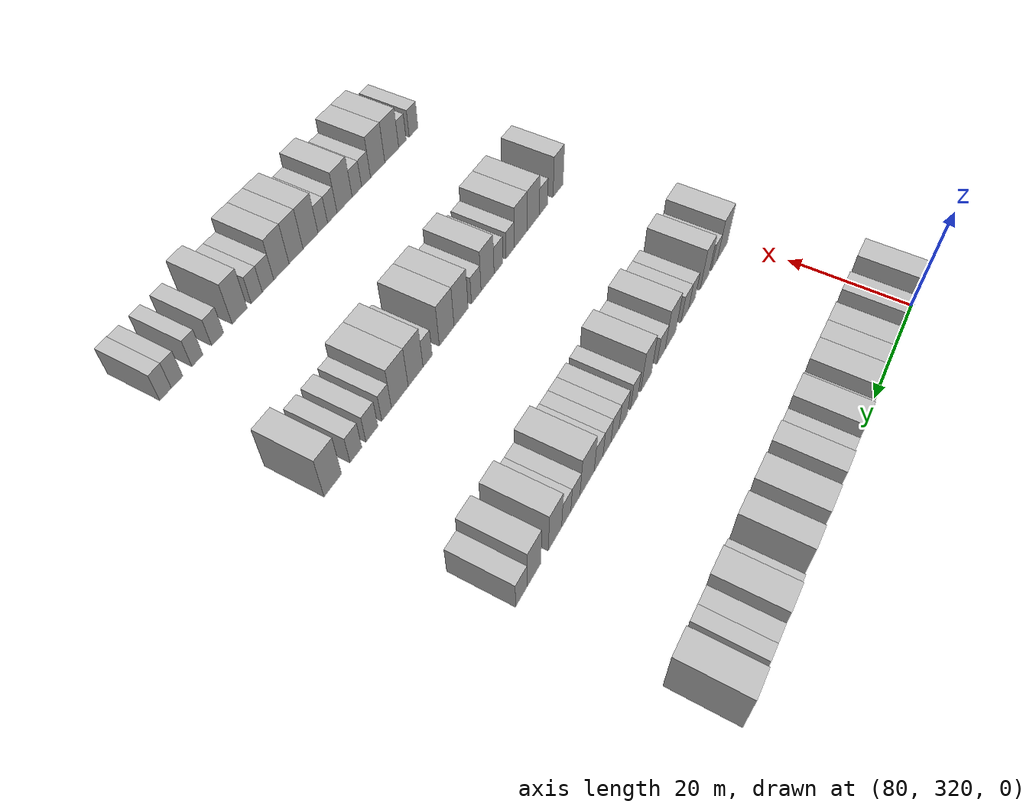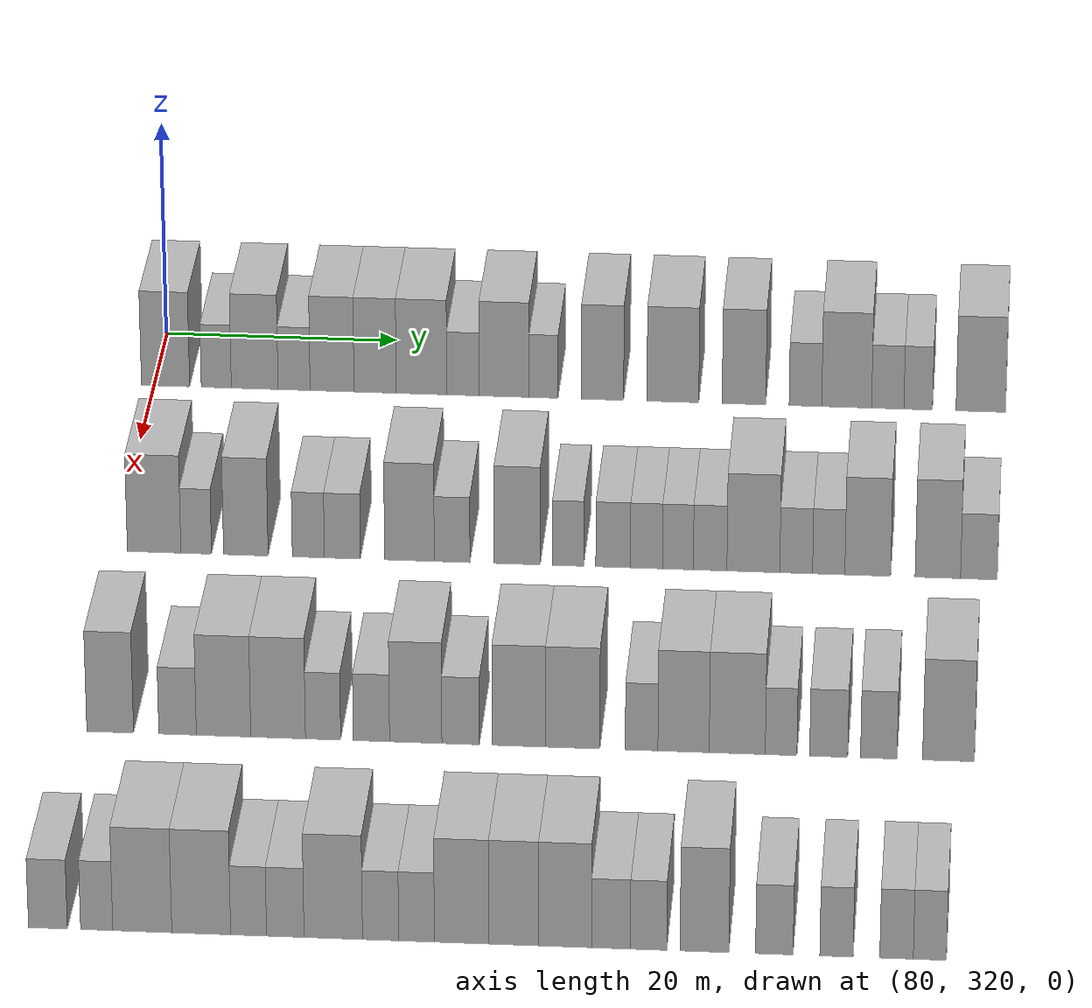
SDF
<sdf version="1.6">
 <world name="default">
  <model name="building_661">
   <static>1</static>
   <pose>85.0000 320.9928 0 0.000000 0.000000 0.000000</pose>
   <link name="link">
    <pose>0 0 4.50 0 0 0</pose>
    <collision name="collision"><geometry><box><size>10.0000 4.1481 9.0000</size></box></geometry></collision>
    <visual name="visual">
     <cast_shadows>0</cast_shadows>
     <geometry><box><size>10.0000 4.1481 9.0000</size></box></geometry>
     <material>
      <script>
       <uri>model://HANNAS_wall/materials/scripts</uri>
       <uri>model://HANNAS_wall/materials/textures</uri>
       <name>vrc/HANNAS_wall</name>
      </script>
     </material>
    </visual>
   </link>
  </model>
  <model name="building_662">
   <static>1</static>
   <pose>85.0000 325.3574 0 0.000000 0.000000 0.000000</pose>
   <link name="link">
    <pose>0 0 3.00 0 0 0</pose>
    <collision name="collision"><geometry><box><size>10.0000 2.5812 6.0000</size></box></geometry></collision>
    <visual name="visual">
     <cast_shadows>0</cast_shadows>
     <geometry><box><size>10.0000 2.5812 6.0000</size></box></geometry>
     <material>
      <script>
       <uri>model://HANNAS_wall/materials/scripts</uri>
       <uri>model://HANNAS_wall/materials/textures</uri>
       <name>vrc/HANNAS_wall</name>
      </script>
     </material>
    </visual>
   </link>
  </model>
  <model name="building_663">
   <static>1</static>
   <pose>85.0000 328.6591 0 0.000000 0.000000 0.000000</pose>
   <link name="link">
    <pose>0 0 4.50 0 0 0</pose>
    <collision name="collision"><geometry><box><size>10.0000 4.0221 9.0000</size></box></geometry></collision>
    <visual name="visual">
     <cast_shadows>0</cast_shadows>
     <geometry><box><size>10.0000 4.0221 9.0000</size></box></geometry>
     <material>
      <script>
       <uri>model://HANNAS_wall/materials/scripts</uri>
       <uri>model://HANNAS_wall/materials/textures</uri>
       <name>vrc/HANNAS_wall</name>
      </script>
     </material>
    </visual>
   </link>
  </model>
  <model name="building_664">
   <static>1</static>
   <pose>85.0000 332.0482 0 0.000000 0.000000 0.000000</pose>
   <link name="link">
    <pose>0 0 3.00 0 0 0</pose>
    <collision name="collision"><geometry><box><size>10.0000 2.7561 6.0000</size></box></geometry></collision>
    <visual name="visual">
     <cast_shadows>0</cast_shadows>
     <geometry><box><size>10.0000 2.7561 6.0000</size></box></geometry>
     <material>
      <script>
       <uri>model://HANNAS_wall/materials/scripts</uri>
       <uri>model://HANNAS_wall/materials/textures</uri>
       <name>vrc/HANNAS_wall</name>
      </script>
     </material>
    </visual>
   </link>
  </model>
  <model name="building_665">
   <static>1</static>
   <pose>85.0000 335.3131 0 0.000000 0.000000 0.000000</pose>
   <link name="link">
    <pose>0 0 4.50 0 0 0</pose>
    <collision name="collision"><geometry><box><size>10.0000 3.7737 9.0000</size></box></geometry></collision>
    <visual name="visual">
     <cast_shadows>0</cast_shadows>
     <geometry><box><size>10.0000 3.7737 9.0000</size></box></geometry>
     <material>
      <script>
       <uri>model://HANNAS_wall/materials/scripts</uri>
       <uri>model://HANNAS_wall/materials/textures</uri>
       <name>vrc/HANNAS_wall</name>
      </script>
     </material>
    </visual>
   </link>
  </model>
  <model name="building_666">
   <static>1</static>
   <pose>85.0000 339.0112 0 0.000000 0.000000 0.000000</pose>
   <link name="link">
    <pose>0 0 4.50 0 0 0</pose>
    <collision name="collision"><geometry><box><size>10.0000 3.6226 9.0000</size></box></geometry></collision>
    <visual name="visual">
     <cast_shadows>0</cast_shadows>
     <geometry><box><size>10.0000 3.6226 9.0000</size></box></geometry>
     <material>
      <script>
       <uri>model://HANNAS_wall/materials/scripts</uri>
       <uri>model://HANNAS_wall/materials/textures</uri>
       <name>vrc/HANNAS_wall</name>
      </script>
     </material>
    </visual>
   </link>
  </model>
  <model name="building_667">
   <static>1</static>
   <pose>85.0000 342.9909 0 0.000000 0.000000 0.000000</pose>
   <link name="link">
    <pose>0 0 4.50 0 0 0</pose>
    <collision name="collision"><geometry><box><size>10.0000 4.3369 9.0000</size></box></geometry></collision>
    <visual name="visual">
     <cast_shadows>0</cast_shadows>
     <geometry><box><size>10.0000 4.3369 9.0000</size></box></geometry>
     <material>
      <script>
       <uri>model://HANNAS_wall/materials/scripts</uri>
       <uri>model://HANNAS_wall/materials/textures</uri>
       <name>vrc/HANNAS_wall</name>
      </script>
     </material>
    </visual>
   </link>
  </model>
  <model name="building_668">
   <static>1</static>
   <pose>85.0000 346.5485 0 0.000000 0.000000 0.000000</pose>
   <link name="link">
    <pose>0 0 3.00 0 0 0</pose>
    <collision name="collision"><geometry><box><size>10.0000 2.7782 6.0000</size></box></geometry></collision>
    <visual name="visual">
     <cast_shadows>0</cast_shadows>
     <geometry><box><size>10.0000 2.7782 6.0000</size></box></geometry>
     <material>
      <script>
       <uri>model://HANNAS_wall/materials/scripts</uri>
       <uri>model://HANNAS_wall/materials/textures</uri>
       <name>vrc/HANNAS_wall</name>
      </script>
     </material>
    </visual>
   </link>
  </model>
  <model name="building_669">
   <static>1</static>
   <pose>85.0000 350.0756 0 0.000000 0.000000 0.000000</pose>
   <link name="link">
    <pose>0 0 4.50 0 0 0</pose>
    <collision name="collision"><geometry><box><size>10.0000 4.2761 9.0000</size></box></geometry></collision>
    <visual name="visual">
     <cast_shadows>0</cast_shadows>
     <geometry><box><size>10.0000 4.2761 9.0000</size></box></geometry>
     <material>
      <script>
       <uri>model://HANNAS_wall/materials/scripts</uri>
       <uri>model://HANNAS_wall/materials/textures</uri>
       <name>vrc/HANNAS_wall</name>
      </script>
     </material>
    </visual>
   </link>
  </model>
  <model name="building_670">
   <static>1</static>
   <pose>85.0000 353.4515 0 0.000000 0.000000 0.000000</pose>
   <link name="link">
    <pose>0 0 3.00 0 0 0</pose>
    <collision name="collision"><geometry><box><size>10.0000 2.4756 6.0000</size></box></geometry></collision>
    <visual name="visual">
     <cast_shadows>0</cast_shadows>
     <geometry><box><size>10.0000 2.4756 6.0000</size></box></geometry>
     <material>
      <script>
       <uri>model://HANNAS_wall/materials/scripts</uri>
       <uri>model://HANNAS_wall/materials/textures</uri>
       <name>vrc/HANNAS_wall</name>
      </script>
     </material>
    </visual>
   </link>
  </model>
  <model name="building_671">
   <static>1</static>
   <pose>85.0000 358.4943 0 0.000000 0.000000 0.000000</pose>
   <link name="link">
    <pose>0 0 4.50 0 0 0</pose>
    <collision name="collision"><geometry><box><size>10.0000 3.6102 9.0000</size></box></geometry></collision>
    <visual name="visual">
     <cast_shadows>0</cast_shadows>
     <geometry><box><size>10.0000 3.6102 9.0000</size></box></geometry>
     <material>
      <script>
       <uri>model://HANNAS_wall/materials/scripts</uri>
       <uri>model://HANNAS_wall/materials/textures</uri>
       <name>vrc/HANNAS_wall</name>
      </script>
     </material>
    </visual>
   </link>
  </model>
  <model name="building_672">
   <static>1</static>
   <pose>85.0000 364.5094 0 0.000000 0.000000 0.000000</pose>
   <link name="link">
    <pose>0 0 4.50 0 0 0</pose>
    <collision name="collision"><geometry><box><size>10.0000 4.4199 9.0000</size></box></geometry></collision>
    <visual name="visual">
     <cast_shadows>0</cast_shadows>
     <geometry><box><size>10.0000 4.4199 9.0000</size></box></geometry>
     <material>
      <script>
       <uri>model://HANNAS_wall/materials/scripts</uri>
       <uri>model://HANNAS_wall/materials/textures</uri>
       <name>vrc/HANNAS_wall</name>
      </script>
     </material>
    </visual>
   </link>
  </model>
  <model name="building_673">
   <static>1</static>
   <pose>85.0000 370.5767 0 0.000000 0.000000 0.000000</pose>
   <link name="link">
    <pose>0 0 4.50 0 0 0</pose>
    <collision name="collision"><geometry><box><size>10.0000 3.7147 9.0000</size></box></geometry></collision>
    <visual name="visual">
     <cast_shadows>0</cast_shadows>
     <geometry><box><size>10.0000 3.7147 9.0000</size></box></geometry>
     <material>
      <script>
       <uri>model://HANNAS_wall/materials/scripts</uri>
       <uri>model://HANNAS_wall/materials/textures</uri>
       <name>vrc/HANNAS_wall</name>
      </script>
     </material>
    </visual>
   </link>
  </model>
  <model name="building_674">
   <static>1</static>
   <pose>85.0000 375.8198 0 0.000000 0.000000 0.000000</pose>
   <link name="link">
    <pose>0 0 3.00 0 0 0</pose>
    <collision name="collision"><geometry><box><size>10.0000 2.7715 6.0000</size></box></geometry></collision>
    <visual name="visual">
     <cast_shadows>0</cast_shadows>
     <geometry><box><size>10.0000 2.7715 6.0000</size></box></geometry>
     <material>
      <script>
       <uri>model://HANNAS_wall/materials/scripts</uri>
       <uri>model://HANNAS_wall/materials/textures</uri>
       <name>vrc/HANNAS_wall</name>
      </script>
     </material>
    </visual>
   </link>
  </model>
  <model name="building_675">
   <static>1</static>
   <pose>85.0000 379.3300 0 0.000000 0.000000 0.000000</pose>
   <link name="link">
    <pose>0 0 4.50 0 0 0</pose>
    <collision name="collision"><geometry><box><size>10.0000 4.2488 9.0000</size></box></geometry></collision>
    <visual name="visual">
     <cast_shadows>0</cast_shadows>
     <geometry><box><size>10.0000 4.2488 9.0000</size></box></geometry>
     <material>
      <script>
       <uri>model://HANNAS_wall/materials/scripts</uri>
       <uri>model://HANNAS_wall/materials/textures</uri>
       <name>vrc/HANNAS_wall</name>
      </script>
     </material>
    </visual>
   </link>
  </model>
  <model name="building_676">
   <static>1</static>
   <pose>85.0000 382.8301 0 0.000000 0.000000 0.000000</pose>
   <link name="link">
    <pose>0 0 3.00 0 0 0</pose>
    <collision name="collision"><geometry><box><size>10.0000 2.7515 6.0000</size></box></geometry></collision>
    <visual name="visual">
     <cast_shadows>0</cast_shadows>
     <geometry><box><size>10.0000 2.7515 6.0000</size></box></geometry>
     <material>
      <script>
       <uri>model://HANNAS_wall/materials/scripts</uri>
       <uri>model://HANNAS_wall/materials/textures</uri>
       <name>vrc/HANNAS_wall</name>
      </script>
     </material>
    </visual>
   </link>
  </model>
  <model name="building_677">
   <static>1</static>
   <pose>85.0000 385.4234 0 0.000000 0.000000 0.000000</pose>
   <link name="link">
    <pose>0 0 3.00 0 0 0</pose>
    <collision name="collision"><geometry><box><size>10.0000 2.4351 6.0000</size></box></geometry></collision>
    <visual name="visual">
     <cast_shadows>0</cast_shadows>
     <geometry><box><size>10.0000 2.4351 6.0000</size></box></geometry>
     <material>
      <script>
       <uri>model://HANNAS_wall/materials/scripts</uri>
       <uri>model://HANNAS_wall/materials/textures</uri>
       <name>vrc/HANNAS_wall</name>
      </script>
     </material>
    </visual>
   </link>
  </model>
  <model name="building_678">
   <static>1</static>
   <pose>85.0000 390.7449 0 0.000000 0.000000 0.000000</pose>
   <link name="link">
    <pose>0 0 4.50 0 0 0</pose>
    <collision name="collision"><geometry><box><size>10.0000 4.2079 9.0000</size></box></geometry></collision>
    <visual name="visual">
     <cast_shadows>0</cast_shadows>
     <geometry><box><size>10.0000 4.2079 9.0000</size></box></geometry>
     <material>
      <script>
       <uri>model://HANNAS_wall/materials/scripts</uri>
       <uri>model://HANNAS_wall/materials/textures</uri>
       <name>vrc/HANNAS_wall</name>
      </script>
     </material>
    </visual>
   </link>
  </model>
  <model name="building_884">
   <static>1</static>
   <pose>115.0000 323.4677 0 0.000000 0.000000 0.000000</pose>
   <link name="link">
    <pose>0 0 4.50 0 0 0</pose>
    <collision name="collision"><geometry><box><size>10.0000 4.4150 9.0000</size></box></geometry></collision>
    <visual name="visual">
     <cast_shadows>0</cast_shadows>
     <geometry><box><size>10.0000 4.4150 9.0000</size></box></geometry>
     <material>
      <script>
       <uri>model://HANNAS_wall/materials/scripts</uri>
       <uri>model://HANNAS_wall/materials/textures</uri>
       <name>vrc/HANNAS_wall</name>
      </script>
     </material>
    </visual>
   </link>
  </model>
  <model name="building_885">
   <static>1</static>
   <pose>115.0000 326.9404 0 0.000000 0.000000 0.000000</pose>
   <link name="link">
    <pose>0 0 3.00 0 0 0</pose>
    <collision name="collision"><geometry><box><size>10.0000 2.5305 6.0000</size></box></geometry></collision>
    <visual name="visual">
     <cast_shadows>0</cast_shadows>
     <geometry><box><size>10.0000 2.5305 6.0000</size></box></geometry>
     <material>
      <script>
       <uri>model://HANNAS_wall/materials/scripts</uri>
       <uri>model://HANNAS_wall/materials/textures</uri>
       <name>vrc/HANNAS_wall</name>
      </script>
     </material>
    </visual>
   </link>
  </model>
  <model name="building_886">
   <static>1</static>
   <pose>115.0000 331.0403 0 0.000000 0.000000 0.000000</pose>
   <link name="link">
    <pose>0 0 4.50 0 0 0</pose>
    <collision name="collision"><geometry><box><size>10.0000 3.6694 9.0000</size></box></geometry></collision>
    <visual name="visual">
     <cast_shadows>0</cast_shadows>
     <geometry><box><size>10.0000 3.6694 9.0000</size></box></geometry>
     <material>
      <script>
       <uri>model://HANNAS_wall/materials/scripts</uri>
       <uri>model://HANNAS_wall/materials/textures</uri>
       <name>vrc/HANNAS_wall</name>
      </script>
     </material>
    </visual>
   </link>
  </model>
  <model name="building_887">
   <static>1</static>
   <pose>115.0000 336.1963 0 0.000000 0.000000 0.000000</pose>
   <link name="link">
    <pose>0 0 3.00 0 0 0</pose>
    <collision name="collision"><geometry><box><size>10.0000 2.6426 6.0000</size></box></geometry></collision>
    <visual name="visual">
     <cast_shadows>0</cast_shadows>
     <geometry><box><size>10.0000 2.6426 6.0000</size></box></geometry>
     <material>
      <script>
       <uri>model://HANNAS_wall/materials/scripts</uri>
       <uri>model://HANNAS_wall/materials/textures</uri>
       <name>vrc/HANNAS_wall</name>
      </script>
     </material>
    </visual>
   </link>
  </model>
  <model name="building_888">
   <static>1</static>
   <pose>115.0000 338.9996 0 0.000000 0.000000 0.000000</pose>
   <link name="link">
    <pose>0 0 3.00 0 0 0</pose>
    <collision name="collision"><geometry><box><size>10.0000 2.9640 6.0000</size></box></geometry></collision>
    <visual name="visual">
     <cast_shadows>0</cast_shadows>
     <geometry><box><size>10.0000 2.9640 6.0000</size></box></geometry>
     <material>
      <script>
       <uri>model://HANNAS_wall/materials/scripts</uri>
       <uri>model://HANNAS_wall/materials/textures</uri>
       <name>vrc/HANNAS_wall</name>
      </script>
     </material>
    </visual>
   </link>
  </model>
  <model name="building_889">
   <static>1</static>
   <pose>115.0000 344.5220 0 0.000000 0.000000 0.000000</pose>
   <link name="link">
    <pose>0 0 4.50 0 0 0</pose>
    <collision name="collision"><geometry><box><size>10.0000 4.0808 9.0000</size></box></geometry></collision>
    <visual name="visual">
     <cast_shadows>0</cast_shadows>
     <geometry><box><size>10.0000 4.0808 9.0000</size></box></geometry>
     <material>
      <script>
       <uri>model://HANNAS_wall/materials/scripts</uri>
       <uri>model://HANNAS_wall/materials/textures</uri>
       <name>vrc/HANNAS_wall</name>
      </script>
     </material>
    </visual>
   </link>
  </model>
  <model name="building_890">
   <static>1</static>
   <pose>115.0000 348.0281 0 0.000000 0.000000 0.000000</pose>
   <link name="link">
    <pose>0 0 3.00 0 0 0</pose>
    <collision name="collision"><geometry><box><size>10.0000 2.9313 6.0000</size></box></geometry></collision>
    <visual name="visual">
     <cast_shadows>0</cast_shadows>
     <geometry><box><size>10.0000 2.9313 6.0000</size></box></geometry>
     <material>
      <script>
       <uri>model://HANNAS_wall/materials/scripts</uri>
       <uri>model://HANNAS_wall/materials/textures</uri>
       <name>vrc/HANNAS_wall</name>
      </script>
     </material>
    </visual>
   </link>
  </model>
  <model name="building_891">
   <static>1</static>
   <pose>115.0000 353.3814 0 0.000000 0.000000 0.000000</pose>
   <link name="link">
    <pose>0 0 4.50 0 0 0</pose>
    <collision name="collision"><geometry><box><size>10.0000 3.7753 9.0000</size></box></geometry></collision>
    <visual name="visual">
     <cast_shadows>0</cast_shadows>
     <geometry><box><size>10.0000 3.7753 9.0000</size></box></geometry>
     <material>
      <script>
       <uri>model://HANNAS_wall/materials/scripts</uri>
       <uri>model://HANNAS_wall/materials/textures</uri>
       <name>vrc/HANNAS_wall</name>
      </script>
     </material>
    </visual>
   </link>
  </model>
  <model name="building_892">
   <static>1</static>
   <pose>115.0000 357.5478 0 0.000000 0.000000 0.000000</pose>
   <link name="link">
    <pose>0 0 3.00 0 0 0</pose>
    <collision name="collision"><geometry><box><size>10.0000 2.5576 6.0000</size></box></geometry></collision>
    <visual name="visual">
     <cast_shadows>0</cast_shadows>
     <geometry><box><size>10.0000 2.5576 6.0000</size></box></geometry>
     <material>
      <script>
       <uri>model://HANNAS_wall/materials/scripts</uri>
       <uri>model://HANNAS_wall/materials/textures</uri>
       <name>vrc/HANNAS_wall</name>
      </script>
     </material>
    </visual>
   </link>
  </model>
  <model name="building_893">
   <static>1</static>
   <pose>115.0000 361.2484 0 0.000000 0.000000 0.000000</pose>
   <link name="link">
    <pose>0 0 3.00 0 0 0</pose>
    <collision name="collision"><geometry><box><size>10.0000 2.8434 6.0000</size></box></geometry></collision>
    <visual name="visual">
     <cast_shadows>0</cast_shadows>
     <geometry><box><size>10.0000 2.8434 6.0000</size></box></geometry>
     <material>
      <script>
       <uri>model://HANNAS_wall/materials/scripts</uri>
       <uri>model://HANNAS_wall/materials/textures</uri>
       <name>vrc/HANNAS_wall</name>
      </script>
     </material>
    </visual>
   </link>
  </model>
  <model name="building_894">
   <static>1</static>
   <pose>115.0000 363.9773 0 0.000000 0.000000 0.000000</pose>
   <link name="link">
    <pose>0 0 3.00 0 0 0</pose>
    <collision name="collision"><geometry><box><size>10.0000 2.6145 6.0000</size></box></geometry></collision>
    <visual name="visual">
     <cast_shadows>0</cast_shadows>
     <geometry><box><size>10.0000 2.6145 6.0000</size></box></geometry>
     <material>
      <script>
       <uri>model://HANNAS_wall/materials/scripts</uri>
       <uri>model://HANNAS_wall/materials/textures</uri>
       <name>vrc/HANNAS_wall</name>
      </script>
     </material>
    </visual>
   </link>
  </model>
  <model name="building_895">
   <static>1</static>
   <pose>115.0000 366.5541 0 0.000000 0.000000 0.000000</pose>
   <link name="link">
    <pose>0 0 3.00 0 0 0</pose>
    <collision name="collision"><geometry><box><size>10.0000 2.5391 6.0000</size></box></geometry></collision>
    <visual name="visual">
     <cast_shadows>0</cast_shadows>
     <geometry><box><size>10.0000 2.5391 6.0000</size></box></geometry>
     <material>
      <script>
       <uri>model://HANNAS_wall/materials/scripts</uri>
       <uri>model://HANNAS_wall/materials/textures</uri>
       <name>vrc/HANNAS_wall</name>
      </script>
     </material>
    </visual>
   </link>
  </model>
  <model name="building_896">
   <static>1</static>
   <pose>115.0000 369.1966 0 0.000000 0.000000 0.000000</pose>
   <link name="link">
    <pose>0 0 3.00 0 0 0</pose>
    <collision name="collision"><geometry><box><size>10.0000 2.7458 6.0000</size></box></geometry></collision>
    <visual name="visual">
     <cast_shadows>0</cast_shadows>
     <geometry><box><size>10.0000 2.7458 6.0000</size></box></geometry>
     <material>
      <script>
       <uri>model://HANNAS_wall/materials/scripts</uri>
       <uri>model://HANNAS_wall/materials/textures</uri>
       <name>vrc/HANNAS_wall</name>
      </script>
     </material>
    </visual>
   </link>
  </model>
  <model name="building_897">
   <static>1</static>
   <pose>115.0000 372.7341 0 0.000000 0.000000 0.000000</pose>
   <link name="link">
    <pose>0 0 4.50 0 0 0</pose>
    <collision name="collision"><geometry><box><size>10.0000 4.3292 9.0000</size></box></geometry></collision>
    <visual name="visual">
     <cast_shadows>0</cast_shadows>
     <geometry><box><size>10.0000 4.3292 9.0000</size></box></geometry>
     <material>
      <script>
       <uri>model://HANNAS_wall/materials/scripts</uri>
       <uri>model://HANNAS_wall/materials/textures</uri>
       <name>vrc/HANNAS_wall</name>
      </script>
     </material>
    </visual>
   </link>
  </model>
  <model name="building_898">
   <static>1</static>
   <pose>115.0000 376.2368 0 0.000000 0.000000 0.000000</pose>
   <link name="link">
    <pose>0 0 3.00 0 0 0</pose>
    <collision name="collision"><geometry><box><size>10.0000 2.6763 6.0000</size></box></geometry></collision>
    <visual name="visual">
     <cast_shadows>0</cast_shadows>
     <geometry><box><size>10.0000 2.6763 6.0000</size></box></geometry>
     <material>
      <script>
       <uri>model://HANNAS_wall/materials/scripts</uri>
       <uri>model://HANNAS_wall/materials/textures</uri>
       <name>vrc/HANNAS_wall</name>
      </script>
     </material>
    </visual>
   </link>
  </model>
  <model name="building_899">
   <static>1</static>
   <pose>115.0000 378.8952 0 0.000000 0.000000 0.000000</pose>
   <link name="link">
    <pose>0 0 3.00 0 0 0</pose>
    <collision name="collision"><geometry><box><size>10.0000 2.6406 6.0000</size></box></geometry></collision>
    <visual name="visual">
     <cast_shadows>0</cast_shadows>
     <geometry><box><size>10.0000 2.6406 6.0000</size></box></geometry>
     <material>
      <script>
       <uri>model://HANNAS_wall/materials/scripts</uri>
       <uri>model://HANNAS_wall/materials/textures</uri>
       <name>vrc/HANNAS_wall</name>
      </script>
     </material>
    </visual>
   </link>
  </model>
  <model name="building_900">
   <static>1</static>
   <pose>115.0000 382.0871 0 0.000000 0.000000 0.000000</pose>
   <link name="link">
    <pose>0 0 4.50 0 0 0</pose>
    <collision name="collision"><geometry><box><size>10.0000 3.7431 9.0000</size></box></geometry></collision>
    <visual name="visual">
     <cast_shadows>0</cast_shadows>
     <geometry><box><size>10.0000 3.7431 9.0000</size></box></geometry>
     <material>
      <script>
       <uri>model://HANNAS_wall/materials/scripts</uri>
       <uri>model://HANNAS_wall/materials/textures</uri>
       <name>vrc/HANNAS_wall</name>
      </script>
     </material>
    </visual>
   </link>
  </model>
  <model name="building_901">
   <static>1</static>
   <pose>115.0000 387.8082 0 0.000000 0.000000 0.000000</pose>
   <link name="link">
    <pose>0 0 4.50 0 0 0</pose>
    <collision name="collision"><geometry><box><size>10.0000 3.6990 9.0000</size></box></geometry></collision>
    <visual name="visual">
     <cast_shadows>0</cast_shadows>
     <geometry><box><size>10.0000 3.6990 9.0000</size></box></geometry>
     <material>
      <script>
       <uri>model://HANNAS_wall/materials/scripts</uri>
       <uri>model://HANNAS_wall/materials/textures</uri>
       <name>vrc/HANNAS_wall</name>
      </script>
     </material>
    </visual>
   </link>
  </model>
  <model name="building_902">
   <static>1</static>
   <pose>115.0000 391.1540 0 0.000000 0.000000 0.000000</pose>
   <link name="link">
    <pose>0 0 3.00 0 0 0</pose>
    <collision name="collision"><geometry><box><size>10.0000 2.9928 6.0000</size></box></geometry></collision>
    <visual name="visual">
     <cast_shadows>0</cast_shadows>
     <geometry><box><size>10.0000 2.9928 6.0000</size></box></geometry>
     <material>
      <script>
       <uri>model://HANNAS_wall/materials/scripts</uri>
       <uri>model://HANNAS_wall/materials/textures</uri>
       <name>vrc/HANNAS_wall</name>
      </script>
     </material>
    </visual>
   </link>
  </model>
  <model name="building_1124">
   <static>1</static>
   <pose>145.0000 323.4549 0 0.000000 0.000000 0.000000</pose>
   <link name="link">
    <pose>0 0 4.50 0 0 0</pose>
    <collision name="collision"><geometry><box><size>10.0000 3.6958 9.0000</size></box></geometry></collision>
    <visual name="visual">
     <cast_shadows>0</cast_shadows>
     <geometry><box><size>10.0000 3.6958 9.0000</size></box></geometry>
     <material>
      <script>
       <uri>model://HANNAS_wall/materials/scripts</uri>
       <uri>model://HANNAS_wall/materials/textures</uri>
       <name>vrc/HANNAS_wall</name>
      </script>
     </material>
    </visual>
   </link>
  </model>
  <model name="building_1125">
   <static>1</static>
   <pose>145.0000 328.7836 0 0.000000 0.000000 0.000000</pose>
   <link name="link">
    <pose>0 0 3.00 0 0 0</pose>
    <collision name="collision"><geometry><box><size>10.0000 2.9616 6.0000</size></box></geometry></collision>
    <visual name="visual">
     <cast_shadows>0</cast_shadows>
     <geometry><box><size>10.0000 2.9616 6.0000</size></box></geometry>
     <material>
      <script>
       <uri>model://HANNAS_wall/materials/scripts</uri>
       <uri>model://HANNAS_wall/materials/textures</uri>
       <name>vrc/HANNAS_wall</name>
      </script>
     </material>
    </visual>
   </link>
  </model>
  <model name="building_1126">
   <static>1</static>
   <pose>145.0000 332.4140 0 0.000000 0.000000 0.000000</pose>
   <link name="link">
    <pose>0 0 4.50 0 0 0</pose>
    <collision name="collision"><geometry><box><size>10.0000 4.2992 9.0000</size></box></geometry></collision>
    <visual name="visual">
     <cast_shadows>0</cast_shadows>
     <geometry><box><size>10.0000 4.2992 9.0000</size></box></geometry>
     <material>
      <script>
       <uri>model://HANNAS_wall/materials/scripts</uri>
       <uri>model://HANNAS_wall/materials/textures</uri>
       <name>vrc/HANNAS_wall</name>
      </script>
     </material>
    </visual>
   </link>
  </model>
  <model name="building_1127">
   <static>1</static>
   <pose>145.0000 336.7216 0 0.000000 0.000000 0.000000</pose>
   <link name="link">
    <pose>0 0 4.50 0 0 0</pose>
    <collision name="collision"><geometry><box><size>10.0000 4.3159 9.0000</size></box></geometry></collision>
    <visual name="visual">
     <cast_shadows>0</cast_shadows>
     <geometry><box><size>10.0000 4.3159 9.0000</size></box></geometry>
     <material>
      <script>
       <uri>model://HANNAS_wall/materials/scripts</uri>
       <uri>model://HANNAS_wall/materials/textures</uri>
       <name>vrc/HANNAS_wall</name>
      </script>
     </material>
    </visual>
   </link>
  </model>
  <model name="building_1128">
   <static>1</static>
   <pose>145.0000 340.2677 0 0.000000 0.000000 0.000000</pose>
   <link name="link">
    <pose>0 0 3.00 0 0 0</pose>
    <collision name="collision"><geometry><box><size>10.0000 2.7764 6.0000</size></box></geometry></collision>
    <visual name="visual">
     <cast_shadows>0</cast_shadows>
     <geometry><box><size>10.0000 2.7764 6.0000</size></box></geometry>
     <material>
      <script>
       <uri>model://HANNAS_wall/materials/scripts</uri>
       <uri>model://HANNAS_wall/materials/textures</uri>
       <name>vrc/HANNAS_wall</name>
      </script>
     </material>
    </visual>
   </link>
  </model>
  <model name="building_1129">
   <static>1</static>
   <pose>145.0000 344.0821 0 0.000000 0.000000 0.000000</pose>
   <link name="link">
    <pose>0 0 3.00 0 0 0</pose>
    <collision name="collision"><geometry><box><size>10.0000 2.8522 6.0000</size></box></geometry></collision>
    <visual name="visual">
     <cast_shadows>0</cast_shadows>
     <geometry><box><size>10.0000 2.8522 6.0000</size></box></geometry>
     <material>
      <script>
       <uri>model://HANNAS_wall/materials/scripts</uri>
       <uri>model://HANNAS_wall/materials/textures</uri>
       <name>vrc/HANNAS_wall</name>
      </script>
     </material>
    </visual>
   </link>
  </model>
  <model name="building_1130">
   <static>1</static>
   <pose>145.0000 347.5694 0 0.000000 0.000000 0.000000</pose>
   <link name="link">
    <pose>0 0 4.50 0 0 0</pose>
    <collision name="collision"><geometry><box><size>10.0000 4.1225 9.0000</size></box></geometry></collision>
    <visual name="visual">
     <cast_shadows>0</cast_shadows>
     <geometry><box><size>10.0000 4.1225 9.0000</size></box></geometry>
     <material>
      <script>
       <uri>model://HANNAS_wall/materials/scripts</uri>
       <uri>model://HANNAS_wall/materials/textures</uri>
       <name>vrc/HANNAS_wall</name>
      </script>
     </material>
    </visual>
   </link>
  </model>
  <model name="building_1131">
   <static>1</static>
   <pose>145.0000 351.1100 0 0.000000 0.000000 0.000000</pose>
   <link name="link">
    <pose>0 0 3.00 0 0 0</pose>
    <collision name="collision"><geometry><box><size>10.0000 2.9587 6.0000</size></box></geometry></collision>
    <visual name="visual">
     <cast_shadows>0</cast_shadows>
     <geometry><box><size>10.0000 2.9587 6.0000</size></box></geometry>
     <material>
      <script>
       <uri>model://HANNAS_wall/materials/scripts</uri>
       <uri>model://HANNAS_wall/materials/textures</uri>
       <name>vrc/HANNAS_wall</name>
      </script>
     </material>
    </visual>
   </link>
  </model>
  <model name="building_1132">
   <static>1</static>
   <pose>145.0000 355.6881 0 0.000000 0.000000 0.000000</pose>
   <link name="link">
    <pose>0 0 4.50 0 0 0</pose>
    <collision name="collision"><geometry><box><size>10.0000 4.1975 9.0000</size></box></geometry></collision>
    <visual name="visual">
     <cast_shadows>0</cast_shadows>
     <geometry><box><size>10.0000 4.1975 9.0000</size></box></geometry>
     <material>
      <script>
       <uri>model://HANNAS_wall/materials/scripts</uri>
       <uri>model://HANNAS_wall/materials/textures</uri>
       <name>vrc/HANNAS_wall</name>
      </script>
     </material>
    </visual>
   </link>
  </model>
  <model name="building_1133">
   <static>1</static>
   <pose>145.0000 359.9212 0 0.000000 0.000000 0.000000</pose>
   <link name="link">
    <pose>0 0 4.50 0 0 0</pose>
    <collision name="collision"><geometry><box><size>10.0000 4.2688 9.0000</size></box></geometry></collision>
    <visual name="visual">
     <cast_shadows>0</cast_shadows>
     <geometry><box><size>10.0000 4.2688 9.0000</size></box></geometry>
     <material>
      <script>
       <uri>model://HANNAS_wall/materials/scripts</uri>
       <uri>model://HANNAS_wall/materials/textures</uri>
       <name>vrc/HANNAS_wall</name>
      </script>
     </material>
    </visual>
   </link>
  </model>
  <model name="building_1134">
   <static>1</static>
   <pose>145.0000 365.3314 0 0.000000 0.000000 0.000000</pose>
   <link name="link">
    <pose>0 0 3.00 0 0 0</pose>
    <collision name="collision"><geometry><box><size>10.0000 2.5514 6.0000</size></box></geometry></collision>
    <visual name="visual">
     <cast_shadows>0</cast_shadows>
     <geometry><box><size>10.0000 2.5514 6.0000</size></box></geometry>
     <material>
      <script>
       <uri>model://HANNAS_wall/materials/scripts</uri>
       <uri>model://HANNAS_wall/materials/textures</uri>
       <name>vrc/HANNAS_wall</name>
      </script>
     </material>
    </visual>
   </link>
  </model>
  <model name="building_1135">
   <static>1</static>
   <pose>145.0000 368.6196 0 0.000000 0.000000 0.000000</pose>
   <link name="link">
    <pose>0 0 4.50 0 0 0</pose>
    <collision name="collision"><geometry><box><size>10.0000 4.0251 9.0000</size></box></geometry></collision>
    <visual name="visual">
     <cast_shadows>0</cast_shadows>
     <geometry><box><size>10.0000 4.0251 9.0000</size></box></geometry>
     <material>
      <script>
       <uri>model://HANNAS_wall/materials/scripts</uri>
       <uri>model://HANNAS_wall/materials/textures</uri>
       <name>vrc/HANNAS_wall</name>
      </script>
     </material>
    </visual>
   </link>
  </model>
  <model name="building_1136">
   <static>1</static>
   <pose>145.0000 372.8282 0 0.000000 0.000000 0.000000</pose>
   <link name="link">
    <pose>0 0 4.50 0 0 0</pose>
    <collision name="collision"><geometry><box><size>10.0000 4.3919 9.0000</size></box></geometry></collision>
    <visual name="visual">
     <cast_shadows>0</cast_shadows>
     <geometry><box><size>10.0000 4.3919 9.0000</size></box></geometry>
     <material>
      <script>
       <uri>model://HANNAS_wall/materials/scripts</uri>
       <uri>model://HANNAS_wall/materials/textures</uri>
       <name>vrc/HANNAS_wall</name>
      </script>
     </material>
    </visual>
   </link>
  </model>
  <model name="building_1137">
   <static>1</static>
   <pose>145.0000 376.2645 0 0.000000 0.000000 0.000000</pose>
   <link name="link">
    <pose>0 0 3.00 0 0 0</pose>
    <collision name="collision"><geometry><box><size>10.0000 2.4808 6.0000</size></box></geometry></collision>
    <visual name="visual">
     <cast_shadows>0</cast_shadows>
     <geometry><box><size>10.0000 2.4808 6.0000</size></box></geometry>
     <material>
      <script>
       <uri>model://HANNAS_wall/materials/scripts</uri>
       <uri>model://HANNAS_wall/materials/textures</uri>
       <name>vrc/HANNAS_wall</name>
      </script>
     </material>
    </visual>
   </link>
  </model>
  <model name="building_1138">
   <static>1</static>
   <pose>145.0000 379.9925 0 0.000000 0.000000 0.000000</pose>
   <link name="link">
    <pose>0 0 3.00 0 0 0</pose>
    <collision name="collision"><geometry><box><size>10.0000 2.9752 6.0000</size></box></geometry></collision>
    <visual name="visual">
     <cast_shadows>0</cast_shadows>
     <geometry><box><size>10.0000 2.9752 6.0000</size></box></geometry>
     <material>
      <script>
       <uri>model://HANNAS_wall/materials/scripts</uri>
       <uri>model://HANNAS_wall/materials/textures</uri>
       <name>vrc/HANNAS_wall</name>
      </script>
     </material>
    </visual>
   </link>
  </model>
  <model name="building_1139">
   <static>1</static>
   <pose>145.0000 383.9071 0 0.000000 0.000000 0.000000</pose>
   <link name="link">
    <pose>0 0 3.00 0 0 0</pose>
    <collision name="collision"><geometry><box><size>10.0000 2.8540 6.0000</size></box></geometry></collision>
    <visual name="visual">
     <cast_shadows>0</cast_shadows>
     <geometry><box><size>10.0000 2.8540 6.0000</size></box></geometry>
     <material>
      <script>
       <uri>model://HANNAS_wall/materials/scripts</uri>
       <uri>model://HANNAS_wall/materials/textures</uri>
       <name>vrc/HANNAS_wall</name>
      </script>
     </material>
    </visual>
   </link>
  </model>
  <model name="building_1140">
   <static>1</static>
   <pose>145.0000 389.3547 0 0.000000 0.000000 0.000000</pose>
   <link name="link">
    <pose>0 0 4.50 0 0 0</pose>
    <collision name="collision"><geometry><box><size>10.0000 4.0413 9.0000</size></box></geometry></collision>
    <visual name="visual">
     <cast_shadows>0</cast_shadows>
     <geometry><box><size>10.0000 4.0413 9.0000</size></box></geometry>
     <material>
      <script>
       <uri>model://HANNAS_wall/materials/scripts</uri>
       <uri>model://HANNAS_wall/materials/textures</uri>
       <name>vrc/HANNAS_wall</name>
      </script>
     </material>
    </visual>
   </link>
  </model>
  <model name="building_1353">
   <static>1</static>
   <pose>175.0000 322.3617 0 0.000000 0.000000 0.000000</pose>
   <link name="link">
    <pose>0 0 3.00 0 0 0</pose>
    <collision name="collision"><geometry><box><size>10.0000 2.9373 6.0000</size></box></geometry></collision>
    <visual name="visual">
     <cast_shadows>0</cast_shadows>
     <geometry><box><size>10.0000 2.9373 6.0000</size></box></geometry>
     <material>
      <script>
       <uri>model://HANNAS_wall/materials/scripts</uri>
       <uri>model://HANNAS_wall/materials/textures</uri>
       <name>vrc/HANNAS_wall</name>
      </script>
     </material>
    </visual>
   </link>
  </model>
  <model name="building_1354">
   <static>1</static>
   <pose>175.0000 326.0470 0 0.000000 0.000000 0.000000</pose>
   <link name="link">
    <pose>0 0 3.00 0 0 0</pose>
    <collision name="collision"><geometry><box><size>10.0000 2.4332 6.0000</size></box></geometry></collision>
    <visual name="visual">
     <cast_shadows>0</cast_shadows>
     <geometry><box><size>10.0000 2.4332 6.0000</size></box></geometry>
     <material>
      <script>
       <uri>model://HANNAS_wall/materials/scripts</uri>
       <uri>model://HANNAS_wall/materials/textures</uri>
       <name>vrc/HANNAS_wall</name>
      </script>
     </material>
    </visual>
   </link>
  </model>
  <model name="building_1355">
   <static>1</static>
   <pose>175.0000 329.4925 0 0.000000 0.000000 0.000000</pose>
   <link name="link">
    <pose>0 0 4.50 0 0 0</pose>
    <collision name="collision"><geometry><box><size>10.0000 4.4576 9.0000</size></box></geometry></collision>
    <visual name="visual">
     <cast_shadows>0</cast_shadows>
     <geometry><box><size>10.0000 4.4576 9.0000</size></box></geometry>
     <material>
      <script>
       <uri>model://HANNAS_wall/materials/scripts</uri>
       <uri>model://HANNAS_wall/materials/textures</uri>
       <name>vrc/HANNAS_wall</name>
      </script>
     </material>
    </visual>
   </link>
  </model>
  <model name="building_1356">
   <static>1</static>
   <pose>175.0000 333.9430 0 0.000000 0.000000 0.000000</pose>
   <link name="link">
    <pose>0 0 4.50 0 0 0</pose>
    <collision name="collision"><geometry><box><size>10.0000 4.4435 9.0000</size></box></geometry></collision>
    <visual name="visual">
     <cast_shadows>0</cast_shadows>
     <geometry><box><size>10.0000 4.4435 9.0000</size></box></geometry>
     <material>
      <script>
       <uri>model://HANNAS_wall/materials/scripts</uri>
       <uri>model://HANNAS_wall/materials/textures</uri>
       <name>vrc/HANNAS_wall</name>
      </script>
     </material>
    </visual>
   </link>
  </model>
  <model name="building_1357">
   <static>1</static>
   <pose>175.0000 337.5191 0 0.000000 0.000000 0.000000</pose>
   <link name="link">
    <pose>0 0 3.00 0 0 0</pose>
    <collision name="collision"><geometry><box><size>10.0000 2.7087 6.0000</size></box></geometry></collision>
    <visual name="visual">
     <cast_shadows>0</cast_shadows>
     <geometry><box><size>10.0000 2.7087 6.0000</size></box></geometry>
     <material>
      <script>
       <uri>model://HANNAS_wall/materials/scripts</uri>
       <uri>model://HANNAS_wall/materials/textures</uri>
       <name>vrc/HANNAS_wall</name>
      </script>
     </material>
    </visual>
   </link>
  </model>
  <model name="building_1358">
   <static>1</static>
   <pose>175.0000 340.2862 0 0.000000 0.000000 0.000000</pose>
   <link name="link">
    <pose>0 0 3.00 0 0 0</pose>
    <collision name="collision"><geometry><box><size>10.0000 2.8254 6.0000</size></box></geometry></collision>
    <visual name="visual">
     <cast_shadows>0</cast_shadows>
     <geometry><box><size>10.0000 2.8254 6.0000</size></box></geometry>
     <material>
      <script>
       <uri>model://HANNAS_wall/materials/scripts</uri>
       <uri>model://HANNAS_wall/materials/textures</uri>
       <name>vrc/HANNAS_wall</name>
      </script>
     </material>
    </visual>
   </link>
  </model>
  <model name="building_1359">
   <static>1</static>
   <pose>175.0000 343.9015 0 0.000000 0.000000 0.000000</pose>
   <link name="link">
    <pose>0 0 4.50 0 0 0</pose>
    <collision name="collision"><geometry><box><size>10.0000 4.4052 9.0000</size></box></geometry></collision>
    <visual name="visual">
     <cast_shadows>0</cast_shadows>
     <geometry><box><size>10.0000 4.4052 9.0000</size></box></geometry>
     <material>
      <script>
       <uri>model://HANNAS_wall/materials/scripts</uri>
       <uri>model://HANNAS_wall/materials/textures</uri>
       <name>vrc/HANNAS_wall</name>
      </script>
     </material>
    </visual>
   </link>
  </model>
  <model name="building_1360">
   <static>1</static>
   <pose>175.0000 347.4662 0 0.000000 0.000000 0.000000</pose>
   <link name="link">
    <pose>0 0 3.00 0 0 0</pose>
    <collision name="collision"><geometry><box><size>10.0000 2.7243 6.0000</size></box></geometry></collision>
    <visual name="visual">
     <cast_shadows>0</cast_shadows>
     <geometry><box><size>10.0000 2.7243 6.0000</size></box></geometry>
     <material>
      <script>
       <uri>model://HANNAS_wall/materials/scripts</uri>
       <uri>model://HANNAS_wall/materials/textures</uri>
       <name>vrc/HANNAS_wall</name>
      </script>
     </material>
    </visual>
   </link>
  </model>
  <model name="building_1361">
   <static>1</static>
   <pose>175.0000 350.1732 0 0.000000 0.000000 0.000000</pose>
   <link name="link">
    <pose>0 0 3.00 0 0 0</pose>
    <collision name="collision"><geometry><box><size>10.0000 2.6897 6.0000</size></box></geometry></collision>
    <visual name="visual">
     <cast_shadows>0</cast_shadows>
     <geometry><box><size>10.0000 2.6897 6.0000</size></box></geometry>
     <material>
      <script>
       <uri>model://HANNAS_wall/materials/scripts</uri>
       <uri>model://HANNAS_wall/materials/textures</uri>
       <name>vrc/HANNAS_wall</name>
      </script>
     </material>
    </visual>
   </link>
  </model>
  <model name="building_1362">
   <static>1</static>
   <pose>175.0000 353.5631 0 0.000000 0.000000 0.000000</pose>
   <link name="link">
    <pose>0 0 4.50 0 0 0</pose>
    <collision name="collision"><geometry><box><size>10.0000 4.0903 9.0000</size></box></geometry></collision>
    <visual name="visual">
     <cast_shadows>0</cast_shadows>
     <geometry><box><size>10.0000 4.0903 9.0000</size></box></geometry>
     <material>
      <script>
       <uri>model://HANNAS_wall/materials/scripts</uri>
       <uri>model://HANNAS_wall/materials/textures</uri>
       <name>vrc/HANNAS_wall</name>
      </script>
     </material>
    </visual>
   </link>
  </model>
  <model name="building_1363">
   <static>1</static>
   <pose>175.0000 357.4793 0 0.000000 0.000000 0.000000</pose>
   <link name="link">
    <pose>0 0 4.50 0 0 0</pose>
    <collision name="collision"><geometry><box><size>10.0000 3.7421 9.0000</size></box></geometry></collision>
    <visual name="visual">
     <cast_shadows>0</cast_shadows>
     <geometry><box><size>10.0000 3.7421 9.0000</size></box></geometry>
     <material>
      <script>
       <uri>model://HANNAS_wall/materials/scripts</uri>
       <uri>model://HANNAS_wall/materials/textures</uri>
       <name>vrc/HANNAS_wall</name>
      </script>
     </material>
    </visual>
   </link>
  </model>
  <model name="building_1364">
   <static>1</static>
   <pose>175.0000 361.3362 0 0.000000 0.000000 0.000000</pose>
   <link name="link">
    <pose>0 0 4.50 0 0 0</pose>
    <collision name="collision"><geometry><box><size>10.0000 3.9717 9.0000</size></box></geometry></collision>
    <visual name="visual">
     <cast_shadows>0</cast_shadows>
     <geometry><box><size>10.0000 3.9717 9.0000</size></box></geometry>
     <material>
      <script>
       <uri>model://HANNAS_wall/materials/scripts</uri>
       <uri>model://HANNAS_wall/materials/textures</uri>
       <name>vrc/HANNAS_wall</name>
      </script>
     </material>
    </visual>
   </link>
  </model>
  <model name="building_1365">
   <static>1</static>
   <pose>175.0000 364.7815 0 0.000000 0.000000 0.000000</pose>
   <link name="link">
    <pose>0 0 3.00 0 0 0</pose>
    <collision name="collision"><geometry><box><size>10.0000 2.9188 6.0000</size></box></geometry></collision>
    <visual name="visual">
     <cast_shadows>0</cast_shadows>
     <geometry><box><size>10.0000 2.9188 6.0000</size></box></geometry>
     <material>
      <script>
       <uri>model://HANNAS_wall/materials/scripts</uri>
       <uri>model://HANNAS_wall/materials/textures</uri>
       <name>vrc/HANNAS_wall</name>
      </script>
     </material>
    </visual>
   </link>
  </model>
  <model name="building_1366">
   <static>1</static>
   <pose>175.0000 367.6033 0 0.000000 0.000000 0.000000</pose>
   <link name="link">
    <pose>0 0 3.00 0 0 0</pose>
    <collision name="collision"><geometry><box><size>10.0000 2.7248 6.0000</size></box></geometry></collision>
    <visual name="visual">
     <cast_shadows>0</cast_shadows>
     <geometry><box><size>10.0000 2.7248 6.0000</size></box></geometry>
     <material>
      <script>
       <uri>model://HANNAS_wall/materials/scripts</uri>
       <uri>model://HANNAS_wall/materials/textures</uri>
       <name>vrc/HANNAS_wall</name>
      </script>
     </material>
    </visual>
   </link>
  </model>
  <model name="building_1367">
   <static>1</static>
   <pose>175.0000 371.7914 0 0.000000 0.000000 0.000000</pose>
   <link name="link">
    <pose>0 0 4.50 0 0 0</pose>
    <collision name="collision"><geometry><box><size>10.0000 3.6516 9.0000</size></box></geometry></collision>
    <visual name="visual">
     <cast_shadows>0</cast_shadows>
     <geometry><box><size>10.0000 3.6516 9.0000</size></box></geometry>
     <material>
      <script>
       <uri>model://HANNAS_wall/materials/scripts</uri>
       <uri>model://HANNAS_wall/materials/textures</uri>
       <name>vrc/HANNAS_wall</name>
      </script>
     </material>
    </visual>
   </link>
  </model>
  <model name="building_1368">
   <static>1</static>
   <pose>175.0000 377.0191 0 0.000000 0.000000 0.000000</pose>
   <link name="link">
    <pose>0 0 3.00 0 0 0</pose>
    <collision name="collision"><geometry><box><size>10.0000 2.8037 6.0000</size></box></geometry></collision>
    <visual name="visual">
     <cast_shadows>0</cast_shadows>
     <geometry><box><size>10.0000 2.8037 6.0000</size></box></geometry>
     <material>
      <script>
       <uri>model://HANNAS_wall/materials/scripts</uri>
       <uri>model://HANNAS_wall/materials/textures</uri>
       <name>vrc/HANNAS_wall</name>
      </script>
     </material>
    </visual>
   </link>
  </model>
  <model name="building_1369">
   <static>1</static>
   <pose>175.0000 381.6631 0 0.000000 0.000000 0.000000</pose>
   <link name="link">
    <pose>0 0 3.00 0 0 0</pose>
    <collision name="collision"><geometry><box><size>10.0000 2.4845 6.0000</size></box></geometry></collision>
    <visual name="visual">
     <cast_shadows>0</cast_shadows>
     <geometry><box><size>10.0000 2.4845 6.0000</size></box></geometry>
     <material>
      <script>
       <uri>model://HANNAS_wall/materials/scripts</uri>
       <uri>model://HANNAS_wall/materials/textures</uri>
       <name>vrc/HANNAS_wall</name>
      </script>
     </material>
    </visual>
   </link>
  </model>
  <model name="building_1370">
   <static>1</static>
   <pose>175.0000 386.1533 0 0.000000 0.000000 0.000000</pose>
   <link name="link">
    <pose>0 0 3.00 0 0 0</pose>
    <collision name="collision"><geometry><box><size>10.0000 2.4957 6.0000</size></box></geometry></collision>
    <visual name="visual">
     <cast_shadows>0</cast_shadows>
     <geometry><box><size>10.0000 2.4957 6.0000</size></box></geometry>
     <material>
      <script>
       <uri>model://HANNAS_wall/materials/scripts</uri>
       <uri>model://HANNAS_wall/materials/textures</uri>
       <name>vrc/HANNAS_wall</name>
      </script>
     </material>
    </visual>
   </link>
  </model>
  <model name="building_1371">
   <static>1</static>
   <pose>175.0000 388.6386 0 0.000000 0.000000 0.000000</pose>
   <link name="link">
    <pose>0 0 3.00 0 0 0</pose>
    <collision name="collision"><geometry><box><size>10.0000 2.4750 6.0000</size></box></geometry></collision>
    <visual name="visual">
     <cast_shadows>0</cast_shadows>
     <geometry><box><size>10.0000 2.4750 6.0000</size></box></geometry>
     <material>
      <script>
       <uri>model://HANNAS_wall/materials/scripts</uri>
       <uri>model://HANNAS_wall/materials/textures</uri>
       <name>vrc/HANNAS_wall</name>
      </script>
     </material>
    </visual>
   </link>
  </model>
 </world>
</sdf>
